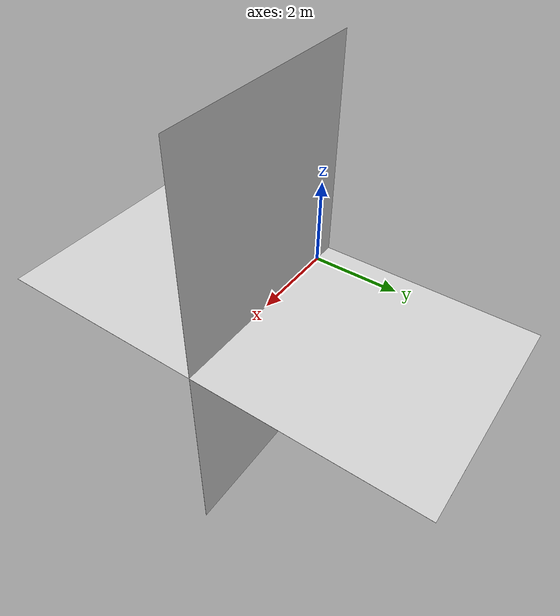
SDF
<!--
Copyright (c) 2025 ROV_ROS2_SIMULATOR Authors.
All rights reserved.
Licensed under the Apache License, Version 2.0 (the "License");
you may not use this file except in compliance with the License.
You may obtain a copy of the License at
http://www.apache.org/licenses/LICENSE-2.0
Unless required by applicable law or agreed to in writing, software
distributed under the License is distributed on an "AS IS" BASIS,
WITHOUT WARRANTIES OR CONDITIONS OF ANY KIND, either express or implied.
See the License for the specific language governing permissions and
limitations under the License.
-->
<?xml version="1.0" ?>

<!-- Simple assembly of the Marine Cybernetics Laboratory (MC-lab) at Tyholt, Trondheim -->
<sdf version="1.9">
	<world name="bts_world">
  <!--  Parameters for the physics, updates every 1ms and realtime/simtime = 1.0 -->
  <physics name="1ms" type="ignored">
    <max_step_size>0.001</max_step_size>
    <real_time_factor>1.0</real_time_factor>
  </physics>

  <!-- Plugins for Gazebo -->
  <!-- Libraries to simulate the physics -->
  <plugin
      filename="libgz-sim-physics-system.so"
      name="gz::sim::systems::Physics">
  </plugin>

  <!-- Libraries to allow for user commands in the simulator, moving, inserting objs etc. -->
  <plugin
      filename="libgz-sim-user-commands-system.so"
      name="gz::sim::systems::UserCommands">
  </plugin>

  <!-- Broadcasts the simulation into the GUI -->
  <plugin
      filename="libgz-sim-scene-broadcaster-system.so"
      name="gz::sim::systems::SceneBroadcaster">
  </plugin>

  <!-- Buoyancy -->
  <plugin
      filename="libgz-sim-buoyancy-system"
      name="gz::sim::systems::Buoyancy">
    <uniform_fluid_density>1000</uniform_fluid_density>
  </plugin>

  <!-- Sensors -->
  <plugin
    filename="libgz-sim-sensors-system.so"
    name="gz::sim::systems::Sensors">
    <render_engine>ogre2</render_engine>
  </plugin>
  <plugin
      filename="libgz-sim-imu-system.so"
      name="gz::sim::systems::Imu">
  </plugin>

	<!-- Light source -->
	<light type="directional" name="sun">
		<cast_shadows>true</cast_shadows>
		<pose>0 0 10 0 0 0</pose>
		<diffuse>0.8 0.8 0.8 1</diffuse>
		<specular>0.2 0.2 0.2 1</specular>
		<attenuation>
		<range>1000</range>
		<constant>0.9</constant>
		<linear>0.01</linear>
		<quadratic>0.001</quadratic>
		</attenuation>
		<direction>-0.5 0.1 -0.9</direction>
	</light>

	<!-- Blueye Docking Station -->
    <model name="bts_docking_station">
        <pose> 2.0 0.0 0.0 1.57 0 0.0 </pose>
		<include>
			<uri>
        model://models/static_assets/bts_docking_station/model.sdf
			</uri>
		</include>
    </model>

  <!-- Blueye Model -->
  <model name="blueye">
      <pose> 0.0 -0.25 0.0 0 0 0.0 </pose>
  <include>
    <uri>
              model://models/dynamic_assets/blueye/blueye.sdf
    </uri>
  </include>
  </model>

  <!-- BTS Logo Plane -->
  <model name="bts_plane">
  <include>
      <uri>model://models/static_assets/bts_logo_plane/model.sdf</uri>
      <pose>2 0 0.0 0 0 0</pose>  <!-- x y z roll pitch yaw -->
  </include>
  </model>

  </world>
</sdf>

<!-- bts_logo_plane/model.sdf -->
<sdf version="1.5">
<model name="textured_plane">
  <static>true</static>
  <link name="link">
  <visual name="plane_visual">
    <geometry>
      <box>
        <size>5 10.0 0.001</size>
      </box>
    </geometry>

    <material>
    <ambient>0.8 0.8 0.8 1</ambient>
    <diffuse>0.8 0.8 0.8 1</diffuse>
    <specular>0.0 0.0 0.0 1</specular>
    <pbr>
      <metal>
        <albedo_map>bts.jpg</albedo_map>
        <normal_map>bts.jpg</normal_map>  <!-- can be the same, just to satisfy PBR -->
        <!-- optional but helpful -->
        <roughness>0.3</roughness>
        <metalness>0.0</metalness>
      </metal>
    </pbr>
    </material>

  </visual>
  </link>
</model>
</sdf>

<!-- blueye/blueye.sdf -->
<sdf version="1.9">
  <model name="blueye" canonical_link="blueye_link">
    <link name="blueye_link">
      <!--Main model link-->
      <pose relative_to="__model__">0.0 0.0 0.0 3.1415 0.0 0.0</pose>
      <visual name="blueye_visual">
        <pose relative_to="blueye_link">-0.325 0.144 0.05 1.5707 3.1415 1.5707</pose>
        <geometry>
          <mesh>
            <uri>model://models/dynamic_assets/blueye/meshes/blueye.dae</uri>
            <scale>1 1 1</scale>
          </mesh>
        </geometry>
      </visual>
      <inertial>
        <mass>22.1</mass>
        <pose>0.0 0.0 0.0 0.0 0.0 0.0</pose>
        <inertia>
          <ixx>50</ixx>
          <ixy>0</ixy>
          <ixz>0</ixz>
          <iyy>50</iyy>
          <iyz>0</iyz>
          <izz>20</izz>
        </inertia>
        <fluid_added_mass>
          <xx>5.2171</xx>
          <yy>29.8729</yy>
          <zz>19.2643</zz>
          <pp>0.0972</pp>
          <qq>0.1822</qq>
          <rr>0.1594</rr>
        </fluid_added_mass>
      </inertial>
      <collision name="blueye_collision">
        <!--Collision box for bouyancy-->
        <pose relative_to="blueye_link">0.0 0.0 -0.3 0.0 0.0 0.0</pose>
        <geometry>
          <box>
            <size>0.419 0.205 0.1025</size>
          </box>
        </geometry>
      </collision>
      <collision name="blueye_collision_2">
        <!--Collision box for bouyancy-->
        <pose relative_to="blueye_link">0.0 0.0 -0.1 0.0 0.0 0.0</pose>
        <geometry>
          <box>
            <size>0.419 0.105 0.3025</size>
          </box>
        </geometry>
        </collision>
    </link>

    <!-- Camera for testing of aruco code odometry -->
    <!-- Taken from https://gitlab.com/aurlab/mundus-mir-project/packages/gazebo_spesifics/gz_models/-/blob/main/models/dynamic_assets/blueye/generated.sdf?ref_type=heads -->

    <link name="blueye_camera_1_link">

      <pose relative_to="blueye_link">0.1 0.0 0.0 3.1416 0 0</pose>
      <sensor name="blueye_front_camera" type="camera">
        <camera>
          <image>
            <width>1920</width>
            <height>1080</height>
          </image>
          <horizontal_fov>1.48</horizontal_fov>
          <clip>
            <far>10.0</far>
            <near>0.1</near>
          </clip>
          <camera_info_topic>/blueye/camera/front_camera/camera_info</camera_info_topic>
        </camera>
        <always_on>1</always_on>
        <update_rate>10</update_rate>
        <topic>/blueye/camera/front_camera/image_raw</topic>
        <visualize>1</visualize>
      </sensor>
      <inertial>
        <mass>0.0001</mass>
      </inertial>
    </link>

    <joint name="blueye_camera_1_joint" type="fixed">
      <child>blueye_camera_1_link</child>
      <parent>blueye_link</parent>
    </joint>

    <plugin name="gz::sim::systems::OdometryPublisher" filename="gz-sim-odometry-publisher-system">
      <!--Ground Truth Position-->
      <frame>world_flu</frame>
      <robot_base_frame>"__model__"</robot_base_frame>
      <odom_topic>blueye/odometry_enu/gt</odom_topic>
      <dimensions>3</dimensions>
    </plugin>
    <link name="blueye_imu_link">
      <!--IMU Sensor Link-->
      <pose relative_to="blueye_link">0.0 0.0 0.0 0.0 0.0 0.0</pose>
      <sensor name="blueye_imu" type="imu">
        <update_rate>1000</update_rate>
        <topic>/blueye/imu</topic>
        <imu>
          <linear_acceleration>
            <x>
              <noise type="gaussian">
                <mean>0.0</mean>
                <stddev>0.0</stddev>
                <bias_mean>0.0</bias_mean>
                <bias_stddev>0.0</bias_stddev>
              </noise>
            </x>
            <y>
              <noise type="gaussian">
                <mean>0.0</mean>
                <stddev>0.0</stddev>
                <bias_mean>0.0</bias_mean>
                <bias_stddev>0.0</bias_stddev>
              </noise>
            </y>
            <z>
              <noise type="gaussian">
                <mean>0.0</mean>
                <stddev>0.0</stddev>
                <bias_mean>0.0</bias_mean>
                <bias_stddev>0.0</bias_stddev>
              </noise>
            </z>
          </linear_acceleration>
          <angular_velocity>
            <x>
              <noise type="gaussian">
                <mean>0.0</mean>
                <stddev>0.0</stddev>
                <bias_mean>0.0</bias_mean>
                <bias_stddev>0.0</bias_stddev>
              </noise>
            </x>
            <y>
              <noise type="gaussian">
                <mean>0.0</mean>
                <stddev>0.0</stddev>
                <bias_mean>0.0</bias_mean>
                <bias_stddev>0.0</bias_stddev>
              </noise>
            </y>
            <z>
              <noise type="gaussian">
                <mean>0.0</mean>
                <stddev>0.0</stddev>
                <bias_mean>0.0</bias_mean>
                <bias_stddev>0.0</bias_stddev>
              </noise>
            </z>
          </angular_velocity>
        </imu>
        <always_on>1</always_on>
      </sensor>
      <inertial>
        <mass>0.0001</mass>
      </inertial>
    </link>
    <joint name="blueye_imu_joint" type="fixed">
      <!--IMU Joint-->
      <child>blueye_imu_link</child>
      <parent>blueye_link</parent>
    </joint>
    <link name="blueye_dvl_ray_link">
      <!--DVL Ray Link-->
      <pose relative_to="blueye_link">0.0 0.0 0.0 0.0 1.5758 0.0</pose>
      <sensor name="blueye_dvl_ray" type="gpu_lidar">
        <always_on>1</always_on>
        <update_rate>10</update_rate>
        <topic>/blueye/dvl/ray</topic>
        <visualize>1</visualize>
        <ray>
          <scan>
            <horizontal>
              <samples>1</samples>
              <resolution>1</resolution>
              <min_angle>-0.1</min_angle>
              <max_angle>0.1</max_angle>
            </horizontal>
            <vertical>
              <samples>1</samples>
              <resolution>1</resolution>
              <min_angle>-0.1</min_angle>
              <max_angle>0.1</max_angle>
            </vertical>
          </scan>
          <range>
            <min>0.1</min>
            <max>30.0</max>
            <resolution>0.1</resolution>
          </range>
          <noise>
            <type>gaussian</type>
            <mean>0.0</mean>
            <stddev>0.2</stddev>
          </noise>
        </ray>
      </sensor>
      <inertial>
        <mass>0.0001</mass>
      </inertial>
    </link>
    <joint name="blueye_dvl_ray_joint" type="fixed">
      <!--DVL Ray Joint-->
      <child>blueye_dvl_ray_link</child>
      <parent>blueye_link</parent>
    </joint>
    <link name="blueye_sonar_link">
      <!--Sonar Link-->
      <pose relative_to="blueye_link">0.0 0.0 0.0 0.0 0.0 0.0</pose>
      <sensor name="blueye_sonar" type="gpu_lidar">
        <always_on>1</always_on>
        <update_rate>10</update_rate>
        <topic>/blueye/sonar</topic>
        <visualize>1</visualize>
        <ray>
          <scan>
            <horizontal>
              <samples>100</samples>
              <resolution>0.1</resolution>
              <min_angle>-1.5707</min_angle>
              <max_angle>1.5707</max_angle>
            </horizontal>
            <vertical>
              <samples>100</samples>
              <resolution>0.1</resolution>
              <min_angle>-0.15</min_angle>
              <max_angle>0.15</max_angle>
            </vertical>
          </scan>
          <range>
            <min>0.5</min>
            <max>20.0</max>
            <resolution>0.1</resolution>
          </range>
          <noise>
            <type>gaussian</type>
            <mean>0.0</mean>
            <stddev>0.01</stddev>
          </noise>
        </ray>
      </sensor>
      <inertial>
        <mass>0.0001</mass>
      </inertial>
    </link>
    <joint name="blueye_sonar_joint" type="fixed">
      <!--Sonar Joint-->
      <child>blueye_sonar_link</child>
      <parent>blueye_link</parent>
    </joint>
    <link name="blueye_thruster_1_link">
      <!--Thruster 1 Link-->
      <pose relative_to="blueye_link">-0.14 0.1785 -0.004 0.0 -1.5707 0.0</pose>
      <inertial>
        <mass>0.0001</mass>
      </inertial>
    </link>
    <joint name="blueye_thruster_1_joint" type="revolute">
      <!--Thruster 1 Joint-->
      <child>blueye_thruster_1_link</child>
      <parent>blueye_link</parent>
      <axis>
        <xyz>0 0 -1</xyz>
        <limit>
          <lower>-1e+16</lower>
          <upper>1e+16</upper>
        </limit>
      </axis>
    </joint>
    <plugin name="gz::sim::systems::Thruster" filename="gz-sim-thruster-system">
      <namespace>blueye</namespace>
      <joint_name>blueye_thruster_1_joint</joint_name>
      <fluid_density>1025</fluid_density>
      <propeller_diameter>0.2</propeller_diameter>
      <max_thrust_cmd>50</max_thrust_cmd>
      <min_thrust_cmd>-50</min_thrust_cmd>
    </plugin>
    <link name="blueye_thruster_2_link">
      <!--Thruster 1 Link-->
      <pose relative_to="blueye_link">-0.14 -0.1785 -0.004 0.0 -1.5707 0.0</pose>
      <inertial>
        <mass>0.0001</mass>
      </inertial>
    </link>
    <joint name="blueye_thruster_2_joint" type="revolute">
      <!--Thruster 1 Joint-->
      <child>blueye_thruster_2_link</child>
      <parent>blueye_link</parent>
      <axis>
        <xyz>0 0 -1</xyz>
        <limit>
          <lower>-1e+16</lower>
          <upper>1e+16</upper>
        </limit>
      </axis>
    </joint>
    <plugin name="gz::sim::systems::Thruster" filename="gz-sim-thruster-system">
      <namespace>blueye</namespace>
      <joint_name>blueye_thruster_2_joint</joint_name>
      <fluid_density>1025</fluid_density>
      <propeller_diameter>0.2</propeller_diameter>
      <max_thrust_cmd>50</max_thrust_cmd>
      <min_thrust_cmd>-50</min_thrust_cmd>
    </plugin>
    <link name="blueye_thruster_3_link">
      <!--Thruster 1 Link-->
      <pose relative_to="blueye_link">0.08 -0.034 -0.004 0.0 1.57 -1.57</pose>
      <inertial>
        <mass>0.0001</mass>
      </inertial>
    </link>
    <joint name="blueye_thruster_3_joint" type="revolute">
      <!--Thruster 1 Joint-->
      <child>blueye_thruster_3_link</child>
      <parent>blueye_link</parent>
      <axis>
        <xyz>0 0 -1</xyz>
        <limit>
          <lower>-1e+16</lower>
          <upper>1e+16</upper>
        </limit>
      </axis>
    </joint>
    <plugin name="gz::sim::systems::Thruster" filename="gz-sim-thruster-system">
      <namespace>blueye</namespace>
      <joint_name>blueye_thruster_3_joint</joint_name>
      <fluid_density>1025</fluid_density>
      <propeller_diameter>0.2</propeller_diameter>
      <max_thrust_cmd>50</max_thrust_cmd>
      <min_thrust_cmd>-50</min_thrust_cmd>
    </plugin>
    <link name="blueye_thruster_4_link">
      <!--Thruster 1 Link-->
      <pose relative_to="blueye_link">0.0 0.0015 0.071 0.0 0.0 3.1415</pose>
      <inertial>
        <mass>0.0001</mass>
      </inertial>
    </link>
    <joint name="blueye_thruster_4_joint" type="revolute">
      <!--Thruster 1 Joint-->
      <child>blueye_thruster_4_link</child>
      <parent>blueye_link</parent>
      <axis>
        <xyz>0 0 -1</xyz>
        <limit>
          <lower>-1e+16</lower>
          <upper>1e+16</upper>
        </limit>
      </axis>
    </joint>
    <plugin name="gz::sim::systems::Thruster" filename="gz-sim-thruster-system">
      <namespace>blueye</namespace>
      <joint_name>blueye_thruster_4_joint</joint_name>
      <fluid_density>1025</fluid_density>
      <propeller_diameter>0.2</propeller_diameter>
      <max_thrust_cmd>50</max_thrust_cmd>
      <min_thrust_cmd>-50</min_thrust_cmd>
    </plugin>

    <plugin name="gz::sim::systems::Hydrodynamics" filename="gz-sim-hydrodynamics-system">
  <link_name>blueye_link</link_name>

  <!-- Linear Damping (force proportional to velocity) -->
  <xU>-25.0</xU>     <!-- Surge -->
  <yV>-70.0</yV>     <!-- Sway -->
  <zW>-120.0</zW>     <!-- Heave -->

  <kP>-15.5</kP>      <!-- Roll -->
  <mQ>-15.8</mQ>      <!-- Pitch -->
  <nR>-30.0</nR>      <!-- Yaw -->

  <!-- Quadratic Damping (force proportional to velocity squared) -->
  <xUabsU>-10.0</xUabsU>
  <yVabsV>-15.0</yVabsV>
  <zWabsW>-30.0</zWabsW>

  <kPabsP>-1.5</kPabsP>
  <mQabsQ>-1.5</mQabsQ>
  <nRabsR>-1.0</nRabsR>
</plugin>

  </model>
</sdf>
